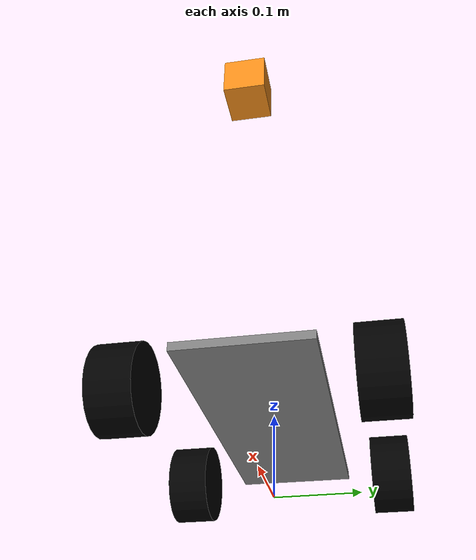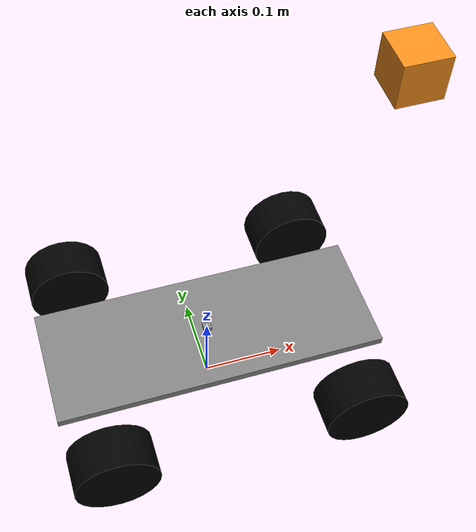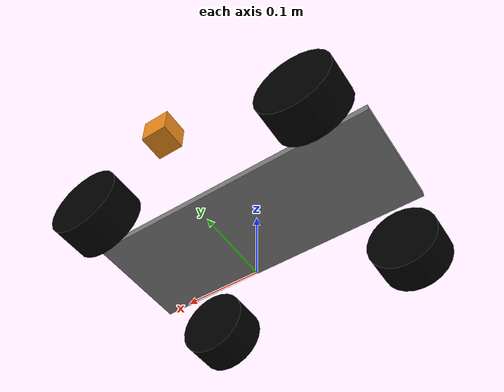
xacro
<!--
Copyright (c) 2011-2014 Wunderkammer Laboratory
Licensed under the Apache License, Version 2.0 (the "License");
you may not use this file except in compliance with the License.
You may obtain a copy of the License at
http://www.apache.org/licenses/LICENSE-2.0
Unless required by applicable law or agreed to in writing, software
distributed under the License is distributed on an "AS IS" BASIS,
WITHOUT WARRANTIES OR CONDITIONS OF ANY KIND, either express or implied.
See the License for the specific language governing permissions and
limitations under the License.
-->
<?xml version="1.0"?>

<robot name="robocar" xmlns:xacro="http://www.ros.org/wiki/xacro">
  <!-- Degree-to-radian conversions -->
  <xacro:property name="degrees_45" value="0.785398163"/>
  <xacro:property name="degrees_90" value="1.57079633"/>

  <!-- chassis_length is measured along the x axis, chassis_width
       along the y axis, and chassis_height along the z axis. -->
  <xacro:property name="chassis_length" value="0.40"/>
  <xacro:property name="chassis_width" value="0.15"/>
  <xacro:property name="chassis_height" value="0.01"/>
  <xacro:property name="chassis_mass" value="2.788"/>

  <!-- hub_dia and tire_dia are the diameters of the hub and tire,
       respectively. -->
  <xacro:property name="hub_dia" value="0.7"/>
  <xacro:property name="tire_dia" value="0.10"/>
  <xacro:property name="tire_width" value="0.05"/>

  <xacro:property name="wheel_mass" value="0.29"/>

  <xacro:property name="wheelbase" value="0.30"/>
  <xacro:property name="hex_hub_dist" value="0.33"/>
  <xacro:property name="axle_length" value="0.03"/>
  <xacro:property name="wheel_travel" value="0.084"/>
  <xacro:property name="shock_z_offset" value="0.0655"/>

  <xacro:property name="hex_hub_depth" value="${tire_width / 2 - axle_length}"/>

  <xacro:property name="shock_eff_limit" value="12.5106"/>
  <xacro:property name="shock_vel_limit" value="1000"/>

  <xacro:property name="axle_eff_limit" value="5.12766"/>
  <xacro:property name="axle_vel_limit" value="244.8696"/>

  <!-- These constants are used to simulate a servo operated at
       6 V. servo_stall_torque is measured in N m. servo_no_load_speed is
       measured in rad/s. -->
  <xacro:property name="servo_stall_torque" value="0.5649"/>
  <xacro:property name="servo_no_load_speed" value="4.553"/>

  <material name="chassis_mat">
    <color rgba="0.5 0.5 0.5 1"/>
  </material>
  <material name="tire_mat">
    <color rgba="0 0 0 1"/>
  </material>

  <!-- Null inertial element. This is needed to make the model work with
       Gazebo. -->
  <xacro:macro name="null_inertial">
    <inertial>
      <mass value="0.001"/>
      <inertia ixx="0.001" ixy="0" ixz="0" iyy="0.001" iyz="0" izz="0.001"/>
    </inertial>
  </xacro:macro>

  <!-- Inertia of a solid cuboid. Width is measured along the x axis, depth
       along the y axis, and height along the z axis. -->
  <xacro:macro name="solid_cuboid_inertial"
               params="width depth height mass *origin">
    <inertial>
      <xacro:insert_block name="origin"/>
      <mass value="${mass}"/>
      <inertia ixx="${mass * (depth * depth + height * height) / 12}"
               ixy="0" ixz="0"
               iyy="${mass * (width * width + height * height) / 12}"
               iyz="0"
               izz="${mass * (width * width + depth * depth) / 12}"/>
    </inertial>
  </xacro:macro>

  <xacro:macro name="thick_walled_tube_inertial"
               params="inner_rad outer_rad height mass">
    <inertial>
      <mass value="${mass}"/>
      <inertia ixx="${(1 / 12) * mass * (3 * (inner_rad * inner_rad +
                    outer_rad * outer_rad) + height * height)}"
               ixy="0" ixz="0"
               iyy="${(1 / 12) * mass * (3 * (inner_rad * inner_rad +
                    outer_rad * outer_rad) + height * height)}"
               iyz="0"
               izz="${mass * (inner_rad * inner_rad +
                    outer_rad * outer_rad) / 2}"/>
    </inertial>
  </xacro:macro>

  <!-- Shock absorber -->
  <xacro:macro name="shock"
               params="lr_prefix fr_prefix lr_reflect fr_reflect child">
    <joint name="${lr_prefix}_${fr_prefix}_shock" type="prismatic">
      <parent link="chassis"/>
      <child link="${child}"/>

      <origin xyz="${fr_reflect * wheelbase / 2}
                   ${lr_reflect * ((hex_hub_dist / 2) - axle_length)}
                   ${(wheel_travel / 2) - shock_z_offset}"/>
      <axis xyz="0 0 -1"/>
      <limit lower="${-wheel_travel / 2}" upper="${wheel_travel / 2}"
             effort="${shock_eff_limit}" velocity="${shock_vel_limit}"/>
    </joint>
    <transmission name="${lr_prefix}_${fr_prefix}_shock_trans">
      <type>transmission_interface/SimpleTransmission</type>
      <joint name="${lr_prefix}_${fr_prefix}_shock">
        <hardwareInterface>hardware_interface/EffortJointInterface</hardwareInterface>
      </joint>
      <actuator name="${lr_prefix}_${fr_prefix}_shock_act">
        <hardwareInterface>hardware_interface/EffortJointInterface</hardwareInterface>
        <mechanicalReduction>1</mechanicalReduction>
      </actuator>
    </transmission>
  </xacro:macro>

  <!-- The "wheel" macro defines an axle carrier, axle, and wheel. -->
  <xacro:macro name="wheel" params="lr_prefix fr_prefix lr_reflect">
    <link name="${lr_prefix}_${fr_prefix}_axle_carrier">
      <xacro:null_inertial/>
    </link>

    <!-- The left and right axles have the same axis so that identical
         rotation values cause the wheels to rotate in the same direction. -->
    <joint name="${lr_prefix}_${fr_prefix}_axle" type="continuous">
      <parent link="${lr_prefix}_${fr_prefix}_axle_carrier"/>
      <child link="${lr_prefix}_${fr_prefix}_wheel"/>
      <origin rpy="${degrees_90} 0 0"/>
      <axis xyz="0 0 -1"/>
      <limit effort="${axle_eff_limit}" velocity="${axle_vel_limit}"/>
    </joint>
    <transmission name="${lr_prefix}_${fr_prefix}_axle_trans">
      <type>transmission_interface/SimpleTransmission</type>
      <joint name="${lr_prefix}_${fr_prefix}_axle">
        <hardwareInterface>hardware_interface/EffortJointInterface</hardwareInterface>
      </joint>
      <actuator name="${lr_prefix}_${fr_prefix}_axle_act">
        <hardwareInterface>hardware_interface/EffortJointInterface</hardwareInterface>
        <mechanicalReduction>1</mechanicalReduction>
      </actuator>
    </transmission>

    <link name="${lr_prefix}_${fr_prefix}_wheel">
      <visual>
        <origin xyz="0
                     ${lr_reflect * (axle_length - (tire_width /
                     2 - hex_hub_depth))}
                     0"/>
        <geometry>
          <cylinder radius="${tire_dia / 2}" length="${tire_width}"/>
        </geometry>
        <material name="tire_mat"/>
      </visual>

      <collision>
        <origin xyz="0
                     ${lr_reflect * (axle_length - (tire_width /
                     2 - hex_hub_depth))}
                     0"/>
        <geometry>
          <cylinder radius="${tire_dia / 2}" length="${tire_width}"/>
        </geometry>
      </collision>

      <xacro:thick_walled_tube_inertial
          inner_rad="${hub_dia / 2}" outer_rad="${tire_dia / 2}"
          height="${tire_width}" mass="${wheel_mass}"/>
    </link>

    <gazebo reference="${lr_prefix}_${fr_prefix}_wheel">
      <material>Gazebo/Wood</material>
    </gazebo>
  </xacro:macro>

  <!-- Front wheel -->
  <xacro:macro name="front_wheel"
               params="lr_prefix fr_prefix lr_reflect fr_reflect">
    <xacro:shock lr_prefix="${lr_prefix}" fr_prefix="${fr_prefix}"
                 lr_reflect="${lr_reflect}" fr_reflect="${fr_reflect}"
                 child="${lr_prefix}_steering_link"/>

    <link name="${lr_prefix}_steering_link">
      <xacro:null_inertial/>
    </link>

    <joint name="${lr_prefix}_steering_joint" type="revolute">
      <parent link="${lr_prefix}_steering_link"/>
      <child link="${lr_prefix}_${fr_prefix}_axle_carrier"/>
      <axis xyz="0 0 1"/>
      <limit lower="${-degrees_45}" upper="${degrees_45}"
             effort="${servo_stall_torque}" velocity="${servo_no_load_speed}"/>
    </joint>

    <transmission name="${lr_prefix}_steering_trans">
      <type>transmission_interface/SimpleTransmission</type>
      <joint name="${lr_prefix}_steering_joint">
        <hardwareInterface>hardware_interface/EffortJointInterface</hardwareInterface>
      </joint>
      <actuator name="${lr_prefix}_steering_act">
        <hardwareInterface>hardware_interface/EffortJointInterface</hardwareInterface>
        <mechanicalReduction>1</mechanicalReduction>
      </actuator>
    </transmission>

    <xacro:wheel lr_prefix="${lr_prefix}" fr_prefix="${fr_prefix}"
                 lr_reflect="${lr_reflect}"/>
  </xacro:macro>

  <!-- Rear wheel -->
  <xacro:macro name="rear_wheel"
               params="lr_prefix fr_prefix lr_reflect fr_reflect">
    <xacro:shock lr_prefix="${lr_prefix}" fr_prefix="${fr_prefix}"
                 lr_reflect="${lr_reflect}" fr_reflect="${fr_reflect}"
                 child="${lr_prefix}_${fr_prefix}_axle_carrier"/>
    <xacro:wheel lr_prefix="${lr_prefix}" fr_prefix="${fr_prefix}"
                 lr_reflect="${lr_reflect}"/>
  </xacro:macro>

  <!-- base_link must have geometry so that its axes can be displayed in
       rviz. -->
  <link name="base_link">
    <visual>
      <geometry>
        <box size="0.01 0.01 0.01"/>
      </geometry>
      <material name="chassis_mat"/>
    </visual>
  </link>
  <gazebo reference="base_link">
    <material>Gazebo/Orange</material>
  </gazebo>

  <!-- Chassis -->
  <link name="chassis">
    <visual>
      <origin xyz="0 0 ${-chassis_height / 2}"/>
      <geometry>
        <box size="${chassis_length} ${chassis_width} ${chassis_height}"/>
      </geometry>
      <material name="chassis_mat"/>
    </visual>

    <collision>
      <origin xyz="0 0 ${-chassis_height / 2}"/>
      <geometry>
        <box size="${chassis_length} ${chassis_width} ${chassis_height}"/>
      </geometry>
    </collision>

    <xacro:solid_cuboid_inertial
        width="${chassis_length}" depth="${chassis_width}"
        height="${chassis_height}" mass="${chassis_mass}">
      <origin xyz="0 0 ${-chassis_height / 2}"/>
    </xacro:solid_cuboid_inertial>
  </link>
  <gazebo reference="chassis">
    <material>Gazebo/Blue</material>
  </gazebo>

  <joint name="base_link_to_chassis" type="fixed">
    <parent link="base_link"/>
    <child link="chassis"/>
  </joint>

  <xacro:front_wheel lr_prefix="left" fr_prefix="front" lr_reflect="1" fr_reflect="1"/>
  <xacro:front_wheel lr_prefix="right" fr_prefix="front" lr_reflect="-1" fr_reflect="1"/>
  <xacro:rear_wheel lr_prefix="left" fr_prefix="rear" lr_reflect="1" fr_reflect="-1"/>
  <xacro:rear_wheel lr_prefix="right" fr_prefix="rear" lr_reflect="-1" fr_reflect="-1"/>

  <!-- camera -->
  <gazebo reference="camera">
    <sensor type="camera" name="camera1">
      <update_rate>30.0</update_rate>
      <camera name="head">
        <horizontal_fov>1.19</horizontal_fov>
        <image>
          <width>1280</width>
          <height>720</height>
          <format>R8G8B8</format>
        </image>
        <clip>
          <near>0.02</near>
          <far>10</far>
        </clip>
      </camera>
      <plugin name="camera_controller" filename="libgazebo_ros_camera.so">
        <alwaysOn>true</alwaysOn>
        <updateRate>0.0</updateRate>
        <cameraName>camera</cameraName>
        <imageTopicName>color/image_raw</imageTopicName>
        <cameraInfoTopicName>color/camera_info</cameraInfoTopicName>
        <!-- camera frame with Z forward -->
        <frameName>camera_link_optical</frameName>
        <!-- 286. TODO camera matrix as in file, two numbers left-->
        <focalLength>944.023585</focalLength>
        <CxPrime>641.408166</CxPrime>
        <Cx>641.408166</Cx>
        <Cy>397.025688</Cy>
        <distortionK1>0.085703</distortionK1>
        <distortionK2>-0.139378</distortionK2>
        <distortionK3>0.005161</distortionK3>
        <distortionT1>0.000282</distortionT1>
        <distortionT2>0.000000</distortionT2>
      </plugin>
    </sensor>
    <material>Gazebo/Orange</material>
  </gazebo>

  <!-- CAMERA -->
  <link name="camera">
    <inertial>
      <mass value="0.001"/>
      <origin xyz="0 0 0" rpy=" 0 0 0"/>
      <inertia
          ixx="1e-6" ixy="0" ixz="0"
          iyy="1e-6" iyz="0"
          izz="1e-6"
      />
    </inertial>

    <collision name='camera_collision'>
      <origin xyz="0 0 0" rpy=" 0 0 0"/>
      <geometry>
        <box size="0.05 0.05 0.05"/>
      </geometry>
    </collision>

    <visual name='camera_visual'>
      <origin xyz="0 0 0" rpy="0 0 0"/>
      <geometry>
        <box size="0.05 0.05 0.05"/>
      </geometry>
    </visual>
  </link>

  <joint type="fixed" name="camera_joint">
    <origin xyz="0.2 0 ${0.36}" rpy="0 0 0"/>
    <child link="camera"/>
    <parent link="chassis"/>
  </joint>

  <!-- generate an optical frame
      http://www.ros.org/reps/rep-0103.html#suffix-frames
      so that ros and opencv can operate on the camera frame correctly
      -->
  <joint name="camera_optical_joint" type="fixed">
    <origin xyz="0 0 0" rpy="${-degrees_90} 0 ${-degrees_90}"/>
    <parent link="camera"/>
    <child link="camera_link_optical"/>
  </joint>

  <link name="camera_link_optical">
  </link>

  <!-- CAMERA END -->

  <!-- projection of base_link to the ground -->
  <link name="base_bottom_link">
  </link>
  <joint type="fixed" name="base_to_bottom_joint">
    <origin xyz="0 0 ${(chassis_height + wheel_travel + tire_dia) / 2}" rpy="0 0 0"/>
    <child link="base_link"/>
    <parent link="base_bottom_link"/>
  </joint>

  <gazebo>
    <plugin name="gazebo_ros_control" filename="libgazebo_ros_control.so"/>
    <!-- publish ground truth into odometry topic -->
    <plugin name="p3d_base_controller" filename="libgazebo_ros_p3d.so">
      <alwaysOn>true</alwaysOn>
      <updateRate>50.0</updateRate>
      <bodyName>base_link</bodyName>
      <topicName>robocar/odometry</topicName>
      <gaussianNoise>0.01</gaussianNoise>
      <frameName>world</frameName>
      <xyzOffsets>0 0 0</xyzOffsets>
      <rpyOffsets>0 0 0</rpyOffsets>
    </plugin>
  </gazebo>
</robot>
